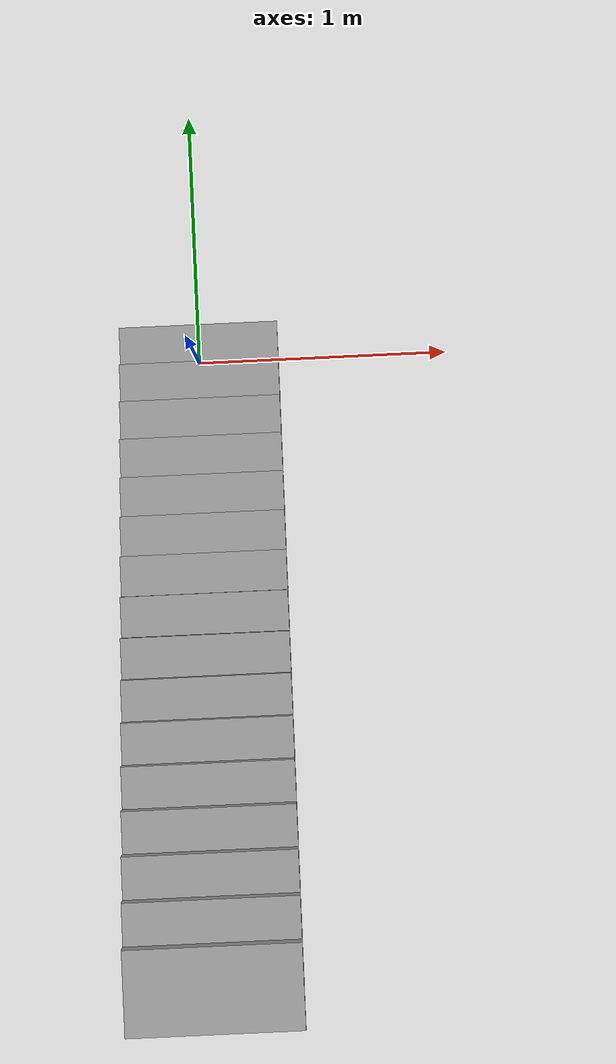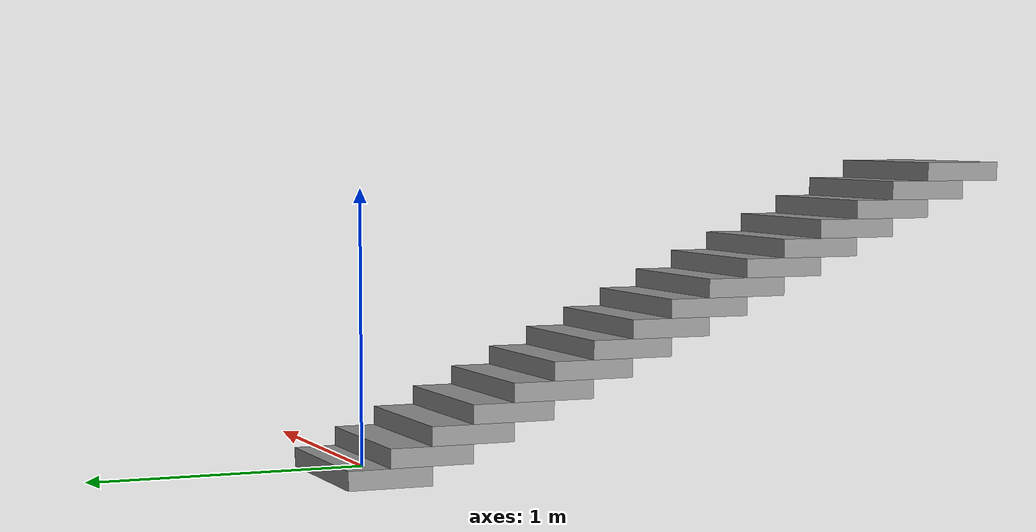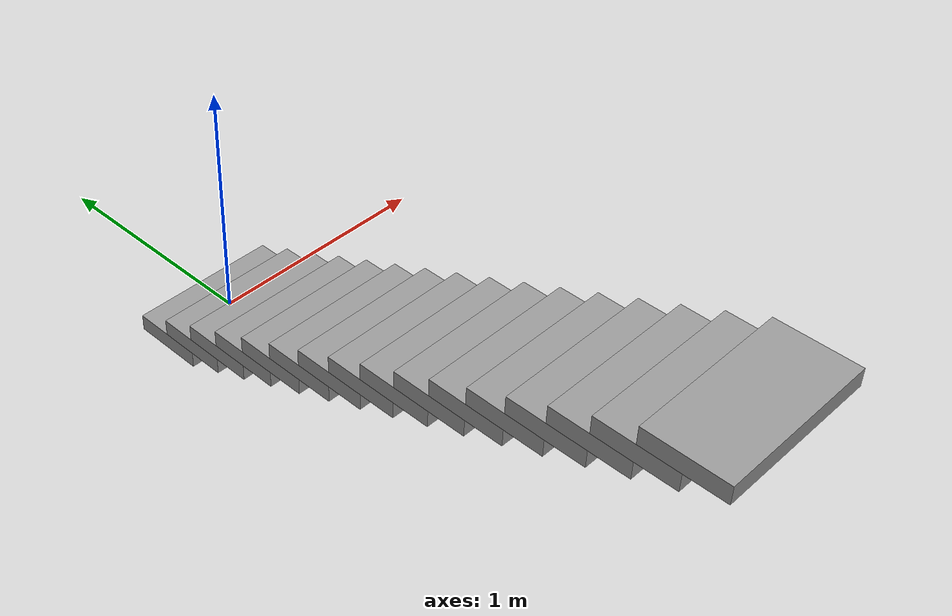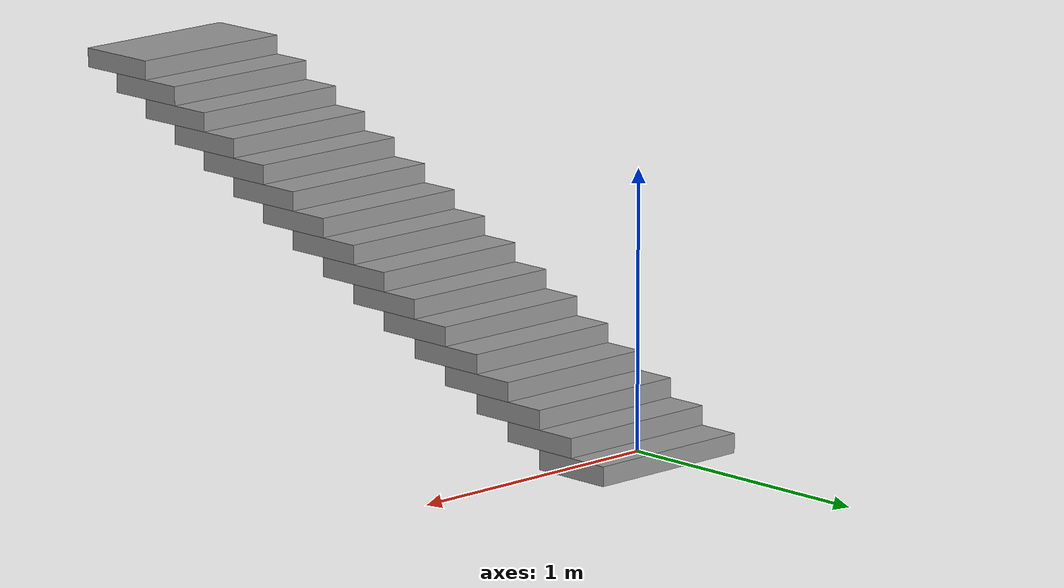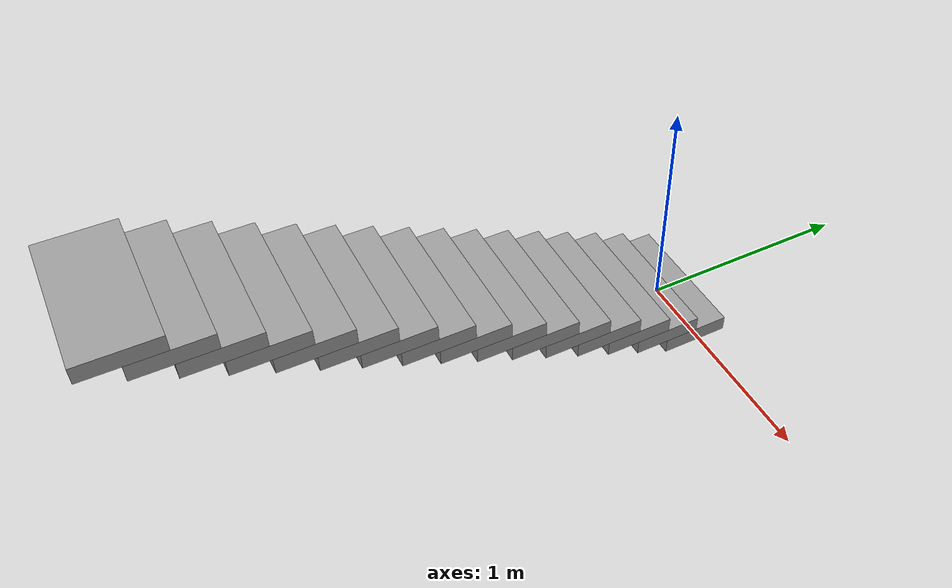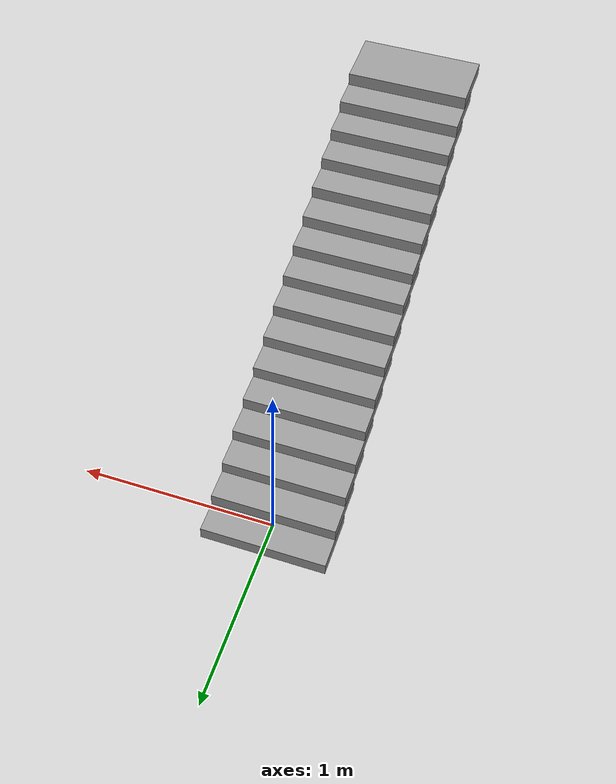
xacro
<?xml version="1.0"?>
<robot xmlns:xacro="http://www.ros.org/wiki/xacro" name="SpotMicroAI">

    <material name="yellow">
        <color rgba="0.060 0.413 0.922 1"/>
    </material>
    <material name="black">
        <color rgba="0.1 0.1 0.1 1"/>
    </material>
    <material name="grey">
        <color rgba="0.6 0.6 0.6 1"/>
    </material>

    <!-- Params -->

    <xacro:property name="stair_length" value="0.640" />
    <xacro:property name="stair_width" value="0.310" />
    <xacro:property name="stair_height" value="0.070" />

    <xacro:macro name="stairs" params="stairs xpos ypos zpos">
        <link name="stair_link_${stairs}">
            <visual>
                <geometry>
                    <box size="${stair_length} ${stair_width} ${stair_height}"/>
                </geometry>
                <material name="grey"/>
                <origin rpy="0 0 0" xyz="${xpos} ${ypos} ${zpos}"/>
            </visual>
            <collision>
                <geometry>
                    <box size="${stair_length} ${stair_width} ${stair_height}"/>
                </geometry>
            </collision>
            <inertial>
                <mass value="0.80"/>
                <inertia ixx="100" ixy="0" ixz="0" iyy="100" iyz="0" izz="100" />
            </inertial>
        </link>
        <xacro:if value="${stairs}">
            <xacro:stairs stairs="${stairs-1}" xpos="0" ypos="${ypos-stair_width/2}" zpos="${zpos+stair_height}"/>
            <joint name="stair_joint_${stairs}" type="fixed">
                <parent link="stair_link_${stairs}"/>
                <child link="stair_link_${stairs-1}"/>
            </joint>
        </xacro:if>
    </xacro:macro>

    <xacro:stairs stairs="15" xpos="0" ypos="0" zpos="0" />
</robot>
